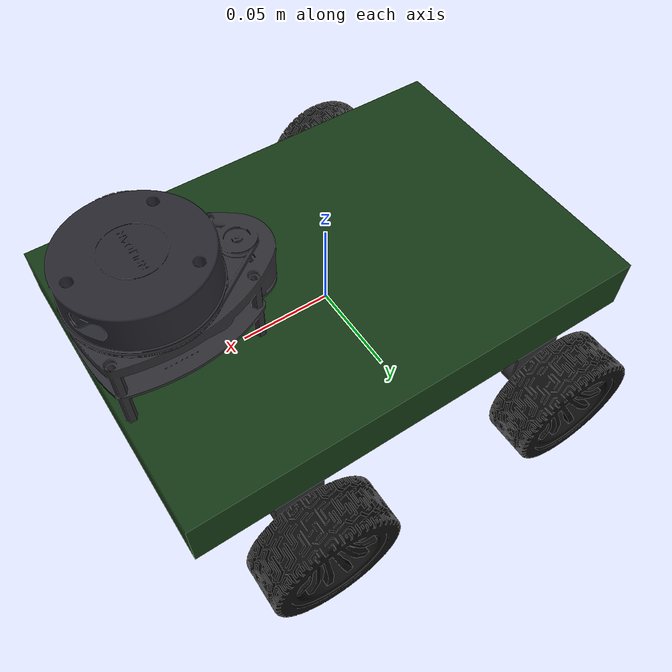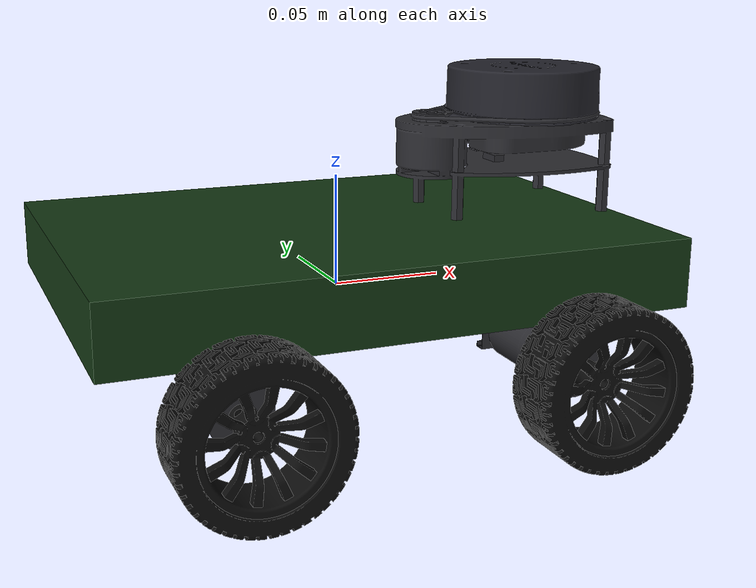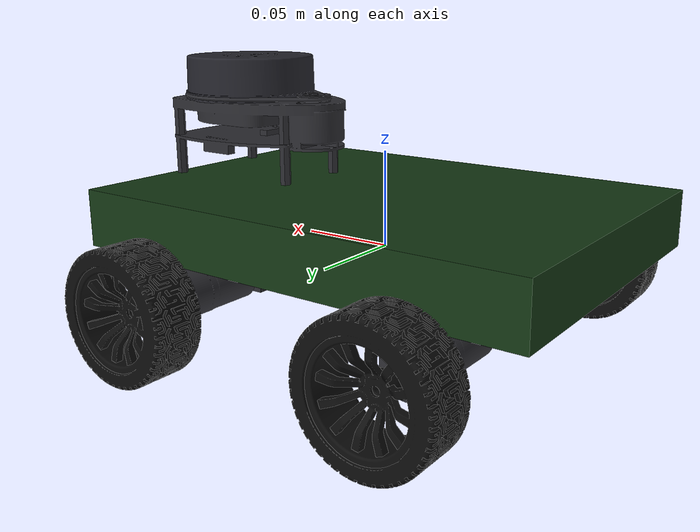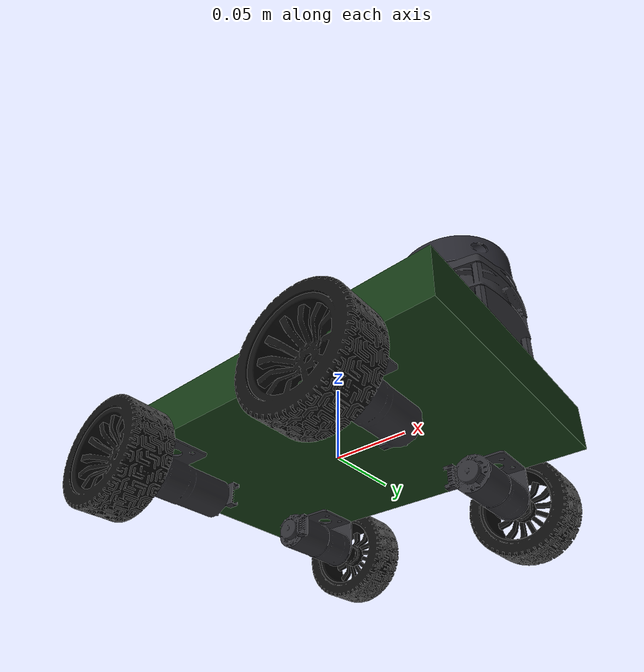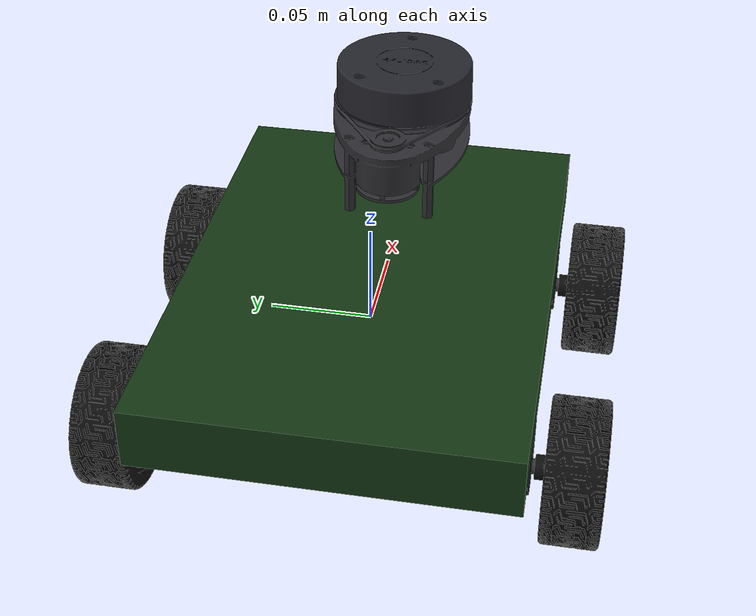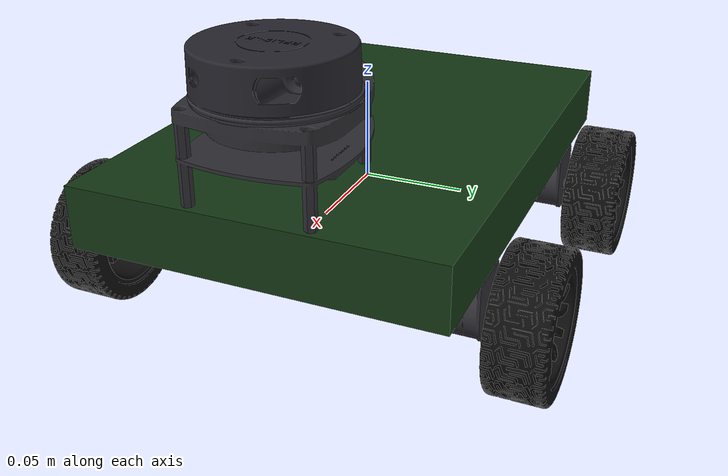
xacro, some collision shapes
<?xml version="1.0" ?>
<robot name="vector_urdf" xmlns:xacro="http://www.ros.org/wiki/xacro">

  <xacro:include filename="$(find vector_description)/urdf/materials.xacro" />
  <xacro:include filename="$(find vector_description)/urdf/vector_urdf.gazebo" />

  <!-- ros2_control hardware interface (velocity-controlled wheels) -->
  <ros2_control name="vector_system" type="system">
    <hardware>
      <plugin>gz_ros2_control/GazeboSimSystem</plugin>
    </hardware>

    <joint name="wheel_fl_joint">
      <command_interface name="velocity">
        <param name="min">-10</param>
        <param name="max">10</param>
      </command_interface>
      <state_interface name="velocity"/>
      <state_interface name="position"/>
    </joint>

    <joint name="wheel_fr_joint">
      <command_interface name="velocity">
        <param name="min">-10</param>
        <param name="max">10</param>
      </command_interface>
      <state_interface name="velocity"/>
      <state_interface name="position"/>
    </joint>

    <joint name="wheel_rl_joint">
      <command_interface name="velocity">
        <param name="min">-10</param>
        <param name="max">10</param>
      </command_interface>
      <state_interface name="velocity"/>
      <state_interface name="position"/>
    </joint>

    <joint name="wheel_rr_joint">
      <command_interface name="velocity">
        <param name="min">-10</param>
        <param name="max">10</param>
      </command_interface>
      <state_interface name="velocity"/>
      <state_interface name="position"/>
    </joint>
  </ros2_control>

  <!-- Links                                                         -->

  <link name="base_link">
    <inertial>
      <origin xyz="-0.0016848158031269212 2.8878394275007632e-05 0.003183490932359" rpy="0 0 0"/>
      <mass value="1.7484518927526278"/>
      <inertia ixx="0.004168" iyy="0.008994" izz="0.013116" ixy="-3e-06" iyz="-0.0" ixz="3.5e-05"/>
    </inertial>
    <visual>
      <origin xyz="0 0 0" rpy="0 0 0"/>
      <geometry>
        <mesh filename="package://vector_description/meshes/base_link.stl" scale="0.001 0.001 0.001"/>
      </geometry>
      <material name="dark_green"/>
    </visual>
    <collision>
      <origin xyz="0 0 0.015" rpy="0 0 0"/>
      <geometry>
        <box size="0.250 0.175 0.030"/>
      </geometry>
    </collision>
  </link>

  <link name="motor_rr">
    <inertial>
      <origin xyz="-0.00795428894201243 0.017201148041795455 -0.018981594416767875" rpy="0 0 0"/>
      <mass value="0.21412983368070576"/>
      <inertia ixx="6.5e-05" iyy="1.9e-05" izz="6.2e-05" ixy="-0.0" iyz="2e-06" ixz="0.0"/>
    </inertial>
    <visual>
      <origin xyz="0.063875 0.079 -0.0" rpy="0 0 0"/>
      <geometry>
        <mesh filename="package://vector_description/meshes/motor_rr.stl" scale="0.001 0.001 0.001"/>
      </geometry>
      <material name="dark_grey"/>
    </visual>
    <collision>
      <origin xyz="-0.008 0.017 -0.019" rpy="0 0 0"/>
      <geometry>
        <box size="0.029 0.070 0.033"/>
      </geometry>
    </collision>
  </link>

  <link name="wheel_rr">
    <inertial>
      <origin xyz="-8.736069603831886e-09 -0.018209556043543462 -3.3649643280120323e-09" rpy="0 0 0"/>
      <mass value="0.27261016619768474"/>
      <inertia ixx="0.000119" iyy="0.0002" izz="0.000119" ixy="0.0" iyz="-0.0" ixz="-0.0"/>
    </inertial>
    <visual>
      <origin xyz="0.071875 0.089 0.019875" rpy="0 0 0"/>
      <geometry>
        <mesh filename="package://vector_description/meshes/wheel_rr.stl" scale="0.001 0.001 0.001"/>
      </geometry>
      <material name="rubber_black"/>
    </visual>
    <collision>
      <origin xyz="0.0 -0.018 0.0" rpy="1.5708 0 0"/>
      <geometry>
        <cylinder radius="0.034" length="0.032"/>
      </geometry>
    </collision>
  </link>

  <link name="lidar_base">
    <inertial>
      <origin xyz="0.024238753126535242 0.02015993089846057 0.035063551600387745" rpy="0 0 0"/>
      <mass value="0.40855718259470825"/>
      <inertia ixx="0.000136" iyy="0.000332" izz="0.00041" ixy="-1e-06" iyz="1e-06" ixz="1e-06"/>
    </inertial>
    <visual>
      <origin xyz="-0.05 0.02 -0.025" rpy="0 0 0"/>
      <geometry>
        <mesh filename="package://vector_description/meshes/lidar_base.stl" scale="0.001 0.001 0.001"/>
      </geometry>
      <material name="dark_grey"/>
    </visual>
    <collision>
      <origin xyz="0.024 0.020 0.035" rpy="0 0 0"/>
      <geometry>
        <box size="0.098 0.072 0.051"/>
      </geometry>
    </collision>
  </link>

  <link name="lidar_link">
    <inertial>
      <origin xyz="0.0022301021944775984 0.00022500287625178015 0.006831231189608558" rpy="0 0 0"/>
      <mass value="0.17281948036952763"/>
      <inertia ixx="7.6e-05" iyy="7.5e-05" izz="0.000123" ixy="-2e-06" iyz="-0.0" ixz="-2e-06"/>
    </inertial>
    <visual>
      <origin xyz="-0.092 -0.0 -0.0732" rpy="0 0 0"/>
      <geometry>
        <mesh filename="package://vector_description/meshes/lidar_link.stl" scale="0.001 0.001 0.001"/>
      </geometry>
      <material name="gunmetal"/>
    </visual>
    <collision>
      <origin xyz="0.002 0.0 0.007" rpy="0 0 0"/>
      <geometry>
        <cylinder radius="0.035" length="0.030"/>
      </geometry>
    </collision>
  </link>

  <link name="motor_fl">
    <inertial>
      <origin xyz="-0.008045711173699663 -0.017201147983939395 -0.01898159441676789" rpy="0 0 0"/>
      <mass value="0.21412983368070573"/>
      <inertia ixx="6.5e-05" iyy="1.9e-05" izz="6.2e-05" ixy="-0.0" iyz="-2e-06" ixz="-0.0"/>
    </inertial>
    <visual>
      <origin xyz="-0.079875 -0.079 -0.0" rpy="0 0 0"/>
      <geometry>
        <mesh filename="package://vector_description/meshes/motor_fl.stl" scale="0.001 0.001 0.001"/>
      </geometry>
      <material name="dark_grey"/>
    </visual>
    <collision>
      <origin xyz="-0.008 -0.017 -0.019" rpy="0 0 0"/>
      <geometry>
        <box size="0.029 0.070 0.033"/>
      </geometry>
    </collision>
  </link>

  <link name="motor_rl">
    <inertial>
      <origin xyz="-0.007905063164616283 -0.00220114770044489 -0.018981624995650415" rpy="0 0 0"/>
      <mass value="0.21412983368070687"/>
      <inertia ixx="6.5e-05" iyy="1.9e-05" izz="6.2e-05" ixy="0.0" iyz="-2e-06" ixz="0.0"/>
    </inertial>
    <visual>
      <origin xyz="0.063825 -0.064 -0.0" rpy="0 0 0"/>
      <geometry>
        <mesh filename="package://vector_description/meshes/motor_rl.stl" scale="0.001 0.001 0.001"/>
      </geometry>
      <material name="dark_grey"/>
    </visual>
    <collision>
      <origin xyz="-0.008 -0.002 -0.019" rpy="0 0 0"/>
      <geometry>
        <box size="0.029 0.070 0.033"/>
      </geometry>
    </collision>
  </link>

  <link name="motor_fr">
    <inertial>
      <origin xyz="-0.00809493715106191 0.002201147700444689 -0.018981624995650363" rpy="0 0 0"/>
      <mass value="0.21412983368070548"/>
      <inertia ixx="6.5e-05" iyy="1.9e-05" izz="6.2e-05" ixy="0.0" iyz="2e-06" ixz="-0.0"/>
    </inertial>
    <visual>
      <origin xyz="-0.079825 0.064 -0.0" rpy="0 0 0"/>
      <geometry>
        <mesh filename="package://vector_description/meshes/motor_fr.stl" scale="0.001 0.001 0.001"/>
      </geometry>
      <material name="dark_grey"/>
    </visual>
    <collision>
      <origin xyz="-0.008 0.002 -0.019" rpy="0 0 0"/>
      <geometry>
        <box size="0.029 0.070 0.033"/>
      </geometry>
    </collision>
  </link>

  <link name="wheel_fl">
    <inertial>
      <origin xyz="8.736070269965701e-09 0.018209556043543434 -3.364964199642495e-09" rpy="0 0 0"/>
      <mass value="0.2726101661976888"/>
      <inertia ixx="0.000119" iyy="0.0002" izz="0.000119" ixy="0.0" iyz="0.0" ixz="0.0"/>
    </inertial>
    <visual>
      <origin xyz="-0.071875 -0.089 0.019875" rpy="0 0 0"/>
      <geometry>
        <mesh filename="package://vector_description/meshes/wheel_fl.stl" scale="0.001 0.001 0.001"/>
      </geometry>
      <material name="rubber_black"/>
    </visual>
    <collision>
      <origin xyz="0.0 0.018 0.0" rpy="1.5708 0 0"/>
      <geometry>
        <cylinder radius="0.034" length="0.032"/>
      </geometry>
    </collision>
  </link>

  <link name="wheel_rl">
    <inertial>
      <origin xyz="1.2999280862846518e-07 0.018209556043543212 -3.3649642412758585e-09" rpy="0 0 0"/>
      <mass value="0.2726101661977031"/>
      <inertia ixx="0.000119" iyy="0.0002" izz="0.000119" ixy="0.0" iyz="0.0" ixz="0.0"/>
    </inertial>
    <visual>
      <origin xyz="0.071776 -0.089 0.019875" rpy="0 0 0"/>
      <geometry>
        <mesh filename="package://vector_description/meshes/wheel_rl.stl" scale="0.001 0.001 0.001"/>
      </geometry>
      <material name="rubber_black"/>
    </visual>
    <collision>
      <origin xyz="0.0 0.018 0.0" rpy="1.5708 0 0"/>
      <geometry>
        <cylinder radius="0.034" length="0.032"/>
      </geometry>
    </collision>
  </link>

  <link name="wheel_fr">
    <inertial>
      <origin xyz="-1.299928082676427e-07 -0.01820955604354338 -3.3649642482147524e-09" rpy="0 0 0"/>
      <mass value="0.27261016619768663"/>
      <inertia ixx="0.000119" iyy="0.0002" izz="0.000119" ixy="0.0" iyz="-0.0" ixz="-0.0"/>
    </inertial>
    <visual>
      <origin xyz="-0.071776 0.089 0.019875" rpy="0 0 0"/>
      <geometry>
        <mesh filename="package://vector_description/meshes/wheel_fr.stl" scale="0.001 0.001 0.001"/>
      </geometry>
      <material name="rubber_black"/>
    </visual>
    <collision>
      <origin xyz="0.0 -0.018 0.0" rpy="1.5708 0 0"/>
      <geometry>
        <cylinder radius="0.034" length="0.032"/>
      </geometry>
    </collision>
  </link>

  <!-- Joints                                                        -->

  <!-- base_link → motor_rr (fixed) -->
  <joint name="motor_rr_joint" type="fixed">
    <origin xyz="-0.063875 -0.079 0.0" rpy="0 0 0"/>
    <parent link="base_link"/>
    <child link="motor_rr"/>
  </joint>

  <!-- motor_rr → wheel_rr (right-rear drive wheel) -->
  <joint name="wheel_rr_joint" type="continuous">
    <origin xyz="-0.008 -0.01 -0.019875" rpy="0 0 0"/>
    <parent link="motor_rr"/>
    <child link="wheel_rr"/>
    <axis xyz="0.0 1.0 0.0"/>
  </joint>

  <!-- base_link → lidar_base (fixed) -->
  <joint name="lidar_base_joint" type="fixed">
    <origin xyz="0.05 -0.02 0.025" rpy="0 0 0"/>
    <parent link="base_link"/>
    <child link="lidar_base"/>
  </joint>

  <!-- lidar_base → lidar_link (fixed) -->
  <joint name="lidar_joint" type="fixed">
    <origin xyz="0.042 0.02 0.0482" rpy="0 0 0"/>
    <parent link="lidar_base"/>
    <child link="lidar_link"/>
  </joint>

  <!-- base_link → motor_fl (fixed) -->
  <joint name="motor_fl_joint" type="fixed">
    <origin xyz="0.079875 0.079 0.0" rpy="0 0 0"/>
    <parent link="base_link"/>
    <child link="motor_fl"/>
  </joint>

  <!-- base_link → motor_rl (fixed) -->
  <joint name="motor_rl_joint" type="fixed">
    <origin xyz="-0.063825 0.064 0.0" rpy="0 0 0"/>
    <parent link="base_link"/>
    <child link="motor_rl"/>
  </joint>

  <!-- base_link → motor_fr (fixed) -->
  <joint name="motor_fr_joint" type="fixed">
    <origin xyz="0.079825 -0.064 0.0" rpy="0 0 0"/>
    <parent link="base_link"/>
    <child link="motor_fr"/>
  </joint>

  <!-- motor_fl → wheel_fl (left-front drive wheel) -->
  <joint name="wheel_fl_joint" type="continuous">
    <origin xyz="-0.008 0.01 -0.019875" rpy="0 0 0"/>
    <parent link="motor_fl"/>
    <child link="wheel_fl"/>
    <axis xyz="0.0 1.0 0.0"/>
  </joint>

  <!-- motor_rl → wheel_rl (left-rear drive wheel) -->
  <joint name="wheel_rl_joint" type="continuous">
    <origin xyz="-0.007951 0.025 -0.019875" rpy="0 0 0"/>
    <parent link="motor_rl"/>
    <child link="wheel_rl"/>
    <axis xyz="0.0 1.0 0.0"/>
  </joint>

  <!-- motor_fr → wheel_fr (right-front drive wheel) -->
  <joint name="wheel_fr_joint" type="continuous">
    <origin xyz="-0.008049 -0.025 -0.019875" rpy="0 0 0"/>
    <parent link="motor_fr"/>
    <child link="wheel_fr"/>
    <axis xyz="0.0 1.0 0.0"/>
  </joint>

  <!-- IMU link — massless, centred on base (TurtleBot3 pattern)   -->
  <link name="imu_link">
    <inertial>
      <mass value="0.001"/>
      <origin xyz="0 0 0" rpy="0 0 0"/>
      <inertia ixx="1e-6" ixy="0" ixz="0" iyy="1e-6" iyz="0" izz="1e-6"/>
    </inertial>
  </link>

  <!-- base_link → imu_link: mounted at robot centre, 20 mm above base plane -->
  <joint name="imu_joint" type="fixed">
    <origin xyz="0.0 0.0 0.02" rpy="0 0 0"/>
    <parent link="base_link"/>
    <child link="imu_link"/>
  </joint>

</robot>

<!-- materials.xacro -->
<robot name="vector_urdf" xmlns:xacro="http://www.ros.org/wiki/xacro" >

<!-- Dark green metallic for base_link -->
<material name="dark_green">
  <color rgba="0.08 0.22 0.08 1.0"/>
</material>

<!-- Dark grey metallic for motors, lidar base -->
<material name="dark_grey">
  <color rgba="0.18 0.18 0.20 1.0"/>
</material>

<!-- Near-black rubber for wheels -->
<material name="rubber_black">
  <color rgba="0.05 0.05 0.05 1.0"/>
</material>

<!-- Gunmetal for lidar head -->
<material name="gunmetal">
  <color rgba="0.15 0.15 0.18 1.0"/>
</material>

</robot>
